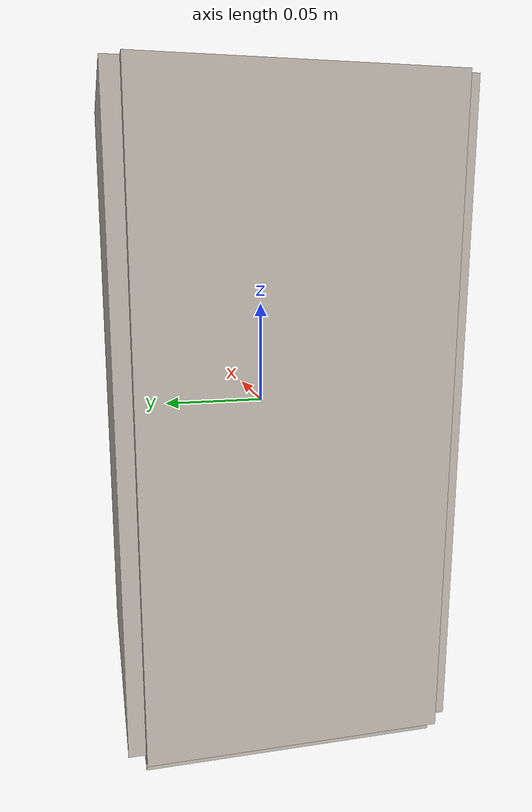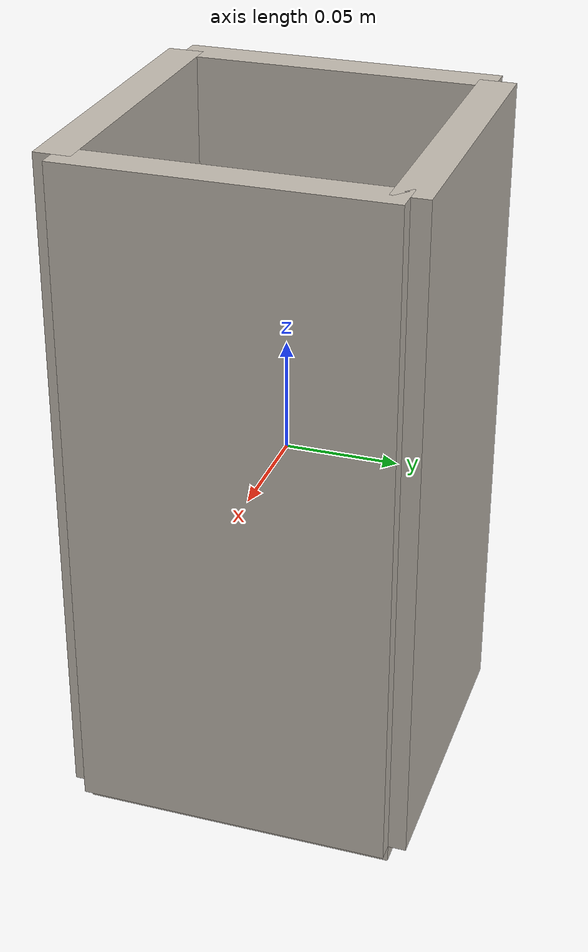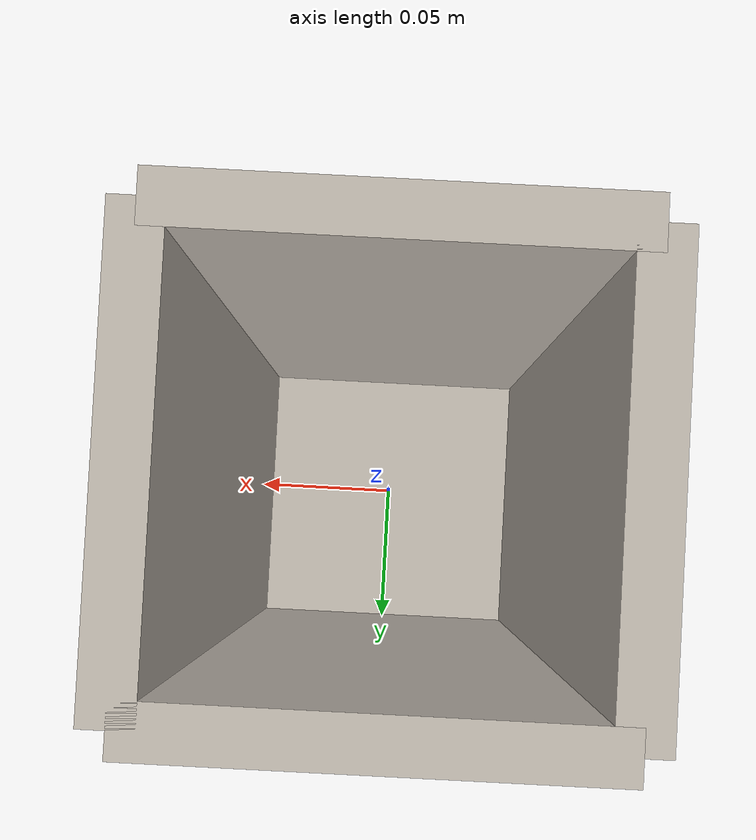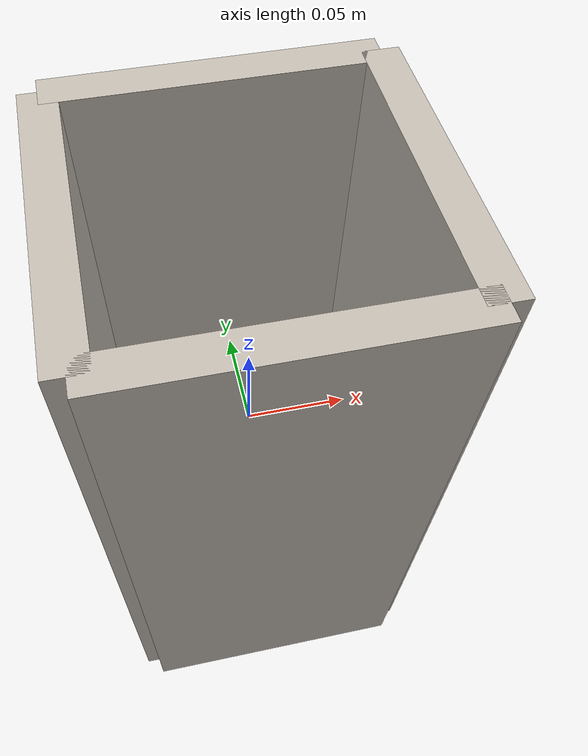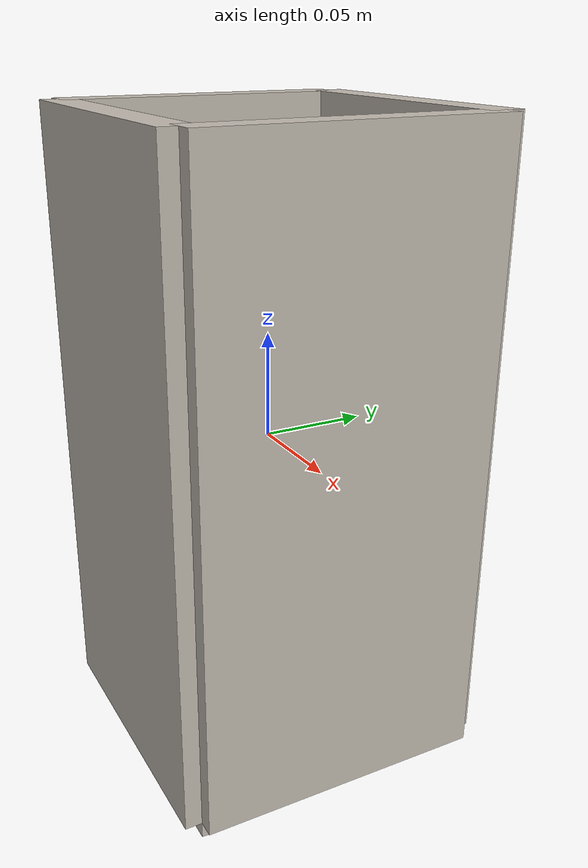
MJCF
<mujoco model="vla82_vla82_001__compact_target">
  <compiler angle="radian"/>
  <asset>
    <texture name="source_texture" type="2d" file="source_texture.png"/>
    <material name="source_material" texture="source_texture" rgba="1 1 1 1"/>
  </asset>
  <default>
    <default class="visual"><geom contype="0" conaffinity="0" group="1"/></default>
    <default class="collision"><geom contype="1" conaffinity="1" group="0" density="300" friction="0.95 0.3 0.1" solref="0.02 1" solimp="0.9 0.95 0.001"/></default>
    <default class="region"><geom contype="0" conaffinity="0" group="1" rgba="0 1 0 0" mass="0"/></default>
  </default>
  <worldbody><body><body name="object">
    <geom name="visual_bottom" class="visual" type="box" pos="0 0 -0.150000" size="0.070000 0.070000 0.008" material="source_material"/>
    <geom name="visual_front" class="visual" type="box" pos="0 -0.070000 0" size="0.070000 0.008 0.150000" material="source_material"/>
    <geom name="visual_back" class="visual" type="box" pos="0 0.070000 0" size="0.070000 0.008 0.150000" material="source_material"/>
    <geom name="visual_left" class="visual" type="box" pos="-0.070000 0 0" size="0.008 0.070000 0.150000" material="source_material"/>
    <geom name="visual_right" class="visual" type="box" pos="0.070000 0 0" size="0.008 0.070000 0.150000" material="source_material"/>
    <geom name="collision_bottom" class="collision" type="box" pos="0 0 -0.150000" size="0.070000 0.070000 0.008"/>
    <geom name="collision_front" class="collision" type="box" pos="0 -0.070000 0" size="0.070000 0.008 0.150000"/>
    <geom name="collision_back" class="collision" type="box" pos="0 0.070000 0" size="0.070000 0.008 0.150000"/>
    <geom name="collision_left" class="collision" type="box" pos="-0.070000 0 0" size="0.008 0.070000 0.150000"/>
    <geom name="collision_right" class="collision" type="box" pos="0.070000 0 0" size="0.008 0.070000 0.150000"/>
    <geom name="reg_bbox" class="region" type="box" pos="0 0 0" size="0.070000 0.070000 0.150000"/>
  </body></body></worldbody>
  <actuator/>
</mujoco>
